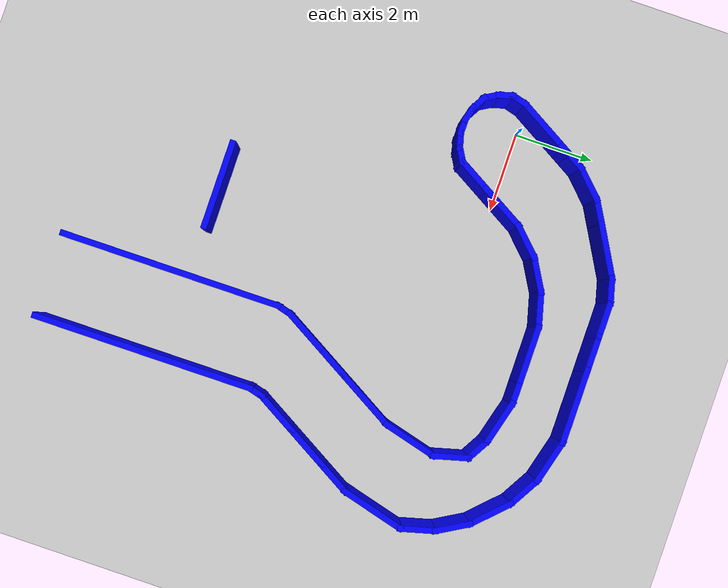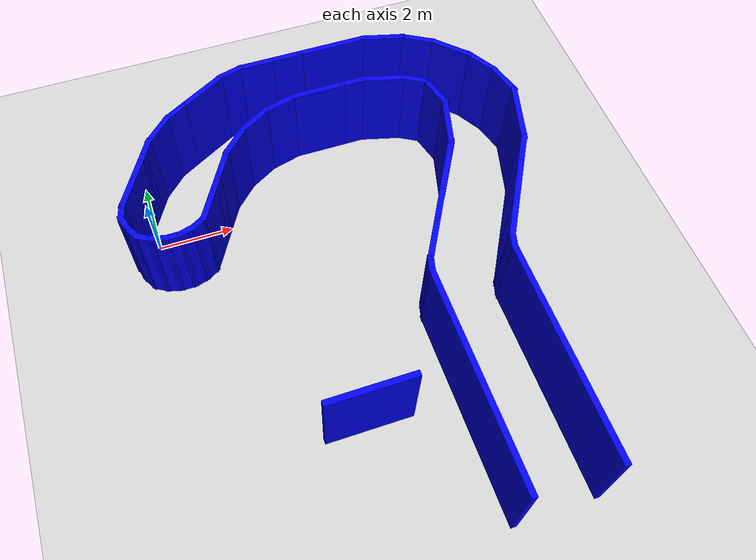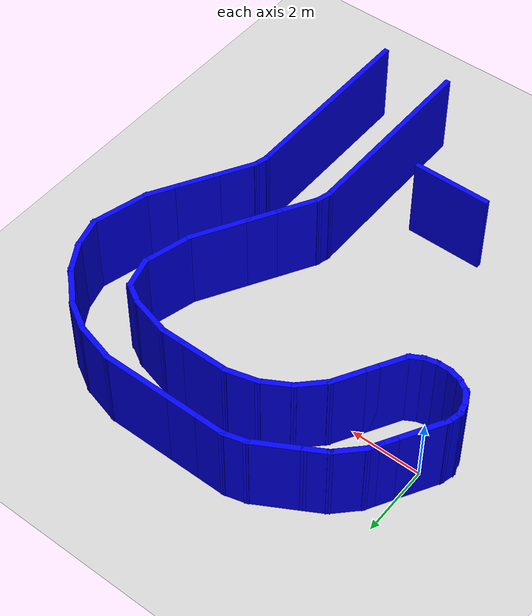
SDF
<sdf version="1.7">
 <world name="default">
  <light name="sun" type="directional">
   <pose>0 0 10 0 -0 0</pose>
   <diffuse>0.8 0.8 0.8 1</diffuse>
   <specular>0.2 0.2 0.2 1</specular>
   <attenuation>
    <range>1000</range>
    <constant>0.9</constant>
    <linear>0.01</linear>
    <quadratic>0.001</quadratic>
   </attenuation>
   <direction>-0.5 0.1 -0.9</direction>
   <spot><inner_angle>0</inner_angle><outer_angle>0</outer_angle><falloff>0</falloff></spot>
  </light>
  <model name="ground_plane">
   <static>1</static>
   <link name="link">
    <collision name="collision">
     <geometry><plane><normal>0 0 1</normal><size>100 100</size></plane></geometry>
     <surface>
      <contact><collide_bitmask>65535</collide_bitmask></contact>
      <friction><ode><mu>100</mu><mu2>50</mu2></ode></friction>
     </surface>
    </collision>
    <visual name="visual">
     <cast_shadows>0</cast_shadows>
     <geometry><plane><normal>0 0 1</normal><size>100 100</size></plane></geometry>
     <material>
      <script><uri>file://media/materials/scripts/gazebo.material</uri><name>Gazebo/Grey</name></script>
     </material>
    </visual>
   </link>
  </model>
  <gravity>0 0 -9.8</gravity>
  <magnetic_field>6e-06 2.3e-05 -4.2e-05</magnetic_field>
  <atmosphere type="adiabatic"/>
  <physics type="ode">
   <max_step_size>0.001</max_step_size>
   <real_time_factor>1</real_time_factor>
   <real_time_update_rate>1000</real_time_update_rate>
  </physics>
  <scene><ambient>0.4 0.4 0.4 1</ambient><background>0.7 0.7 0.7 1</background><shadows>1</shadows></scene>
  <audio><device>default</device></audio>
  <spherical_coordinates>
   <surface_model>EARTH_WGS84</surface_model>
   <latitude_deg>0</latitude_deg>
   <longitude_deg>0</longitude_deg>
   <elevation>0</elevation>
   <heading_deg>0</heading_deg>
  </spherical_coordinates>
  <model name="question_mark">
   <pose>3.28691 -3.29768 0 0 -0 0</pose>
   <link name="Wall_10">
    <collision name="Wall_10_Collision">
     <geometry><box><size>2.25 0.15 2.5</size></box></geometry>
     <pose>0 0 1.25 0 -0 0</pose>
    </collision>
    <visual name="Wall_10_Visual">
     <pose>0 0 1.25 0 -0 0</pose>
     <geometry><box><size>2.25 0.15 2.5</size></box></geometry>
     <material>
      <script><uri>file://media/materials/scripts/gazebo.material</uri><name>Gazebo/Grey</name></script>
      <ambient>0 0 1 1</ambient>
     </material>
     <meta><layer>0</layer></meta>
    </visual>
    <pose>0.410941 -3.22268 0 0 -0 3.14159</pose>
   </link>
   <link name="Wall_13">
    <collision name="Wall_13_Collision">
     <geometry><box><size>5.61808 0.15 2.5</size></box></geometry>
     <pose>0 0 1.25 0 -0 0</pose>
    </collision>
    <visual name="Wall_13_Visual">
     <pose>0 0 1.25 0 -0 0</pose>
     <geometry><box><size>5.61808 0.15 2.5</size></box></geometry>
     <material>
      <script><uri>file://media/materials/scripts/gazebo.material</uri><name>Gazebo/Grey</name></script>
      <ambient>0 0 1 1</ambient>
     </material>
     <meta><layer>0</layer></meta>
    </visual>
    <pose>4.81957 -3.65669 0 0 -0 1.57396</pose>
   </link>
   <link name="Wall_15">
    <collision name="Wall_15_Collision">
     <geometry><box><size>0.5 0.15 2.5</size></box></geometry>
     <pose>0 0 1.25 0 -0 0</pose>
    </collision>
    <visual name="Wall_15_Visual">
     <pose>0 0 1.25 0 -0 0</pose>
     <geometry><box><size>0.5 0.15 2.5</size></box></geometry>
     <material>
      <script><uri>file://media/materials/scripts/gazebo.material</uri><name>Gazebo/Grey</name></script>
      <ambient>0 0 1 1</ambient>
     </material>
     <meta><layer>0</layer></meta>
    </visual>
    <pose>2.75622 -0.753628 0 0 -0 1.309</pose>
   </link>
   <link name="Wall_16">
    <collision name="Wall_16_Collision">
     <geometry><box><size>1.25 0.15 2.5</size></box></geometry>
     <pose>0 0 1.25 0 -0 0</pose>
    </collision>
    <visual name="Wall_16_Visual">
     <pose>0 0 1.25 0 -0 0</pose>
     <geometry><box><size>1.25 0.15 2.5</size></box></geometry>
     <material>
      <script><uri>file://media/materials/scripts/gazebo.material</uri><name>Gazebo/Grey</name></script>
      <ambient>0 0 1 1</ambient>
     </material>
     <meta><layer>0</layer></meta>
    </visual>
    <pose>3.07651 -0.108277 0 0 -0 1.0472</pose>
   </link>
   <link name="Wall_18">
    <collision name="Wall_18_Collision">
     <geometry><box><size>0.5 0.15 2.5</size></box></geometry>
     <pose>0 0 1.25 0 -0 0</pose>
    </collision>
    <visual name="Wall_18_Visual">
     <pose>0 0 1.25 0 -0 0</pose>
     <geometry><box><size>0.5 0.15 2.5</size></box></geometry>
     <material>
      <script><uri>file://media/materials/scripts/gazebo.material</uri><name>Gazebo/Grey</name></script>
      <ambient>0 0 1 1</ambient>
     </material>
     <meta><layer>0</layer></meta>
    </visual>
    <pose>4.85622 -0.753628 0 0 -0 1.309</pose>
   </link>
   <link name="Wall_19">
    <collision name="Wall_19_Collision">
     <geometry><box><size>1.25 0.15 2.5</size></box></geometry>
     <pose>0 0 1.25 0 -0 0</pose>
    </collision>
    <visual name="Wall_19_Visual">
     <pose>0 0 1.25 0 -0 0</pose>
     <geometry><box><size>1.25 0.15 2.5</size></box></geometry>
     <material>
      <script><uri>file://media/materials/scripts/gazebo.material</uri><name>Gazebo/Grey</name></script>
      <ambient>0 0 1 1</ambient>
     </material>
     <meta><layer>0</layer></meta>
    </visual>
    <pose>5.17652 -0.108277 0 0 -0 1.0472</pose>
   </link>
   <link name="Wall_25">
    <collision name="Wall_25_Collision">
     <geometry><box><size>1 0.15 2.5</size></box></geometry>
     <pose>0 0 1.25 0 -0 0</pose>
    </collision>
    <visual name="Wall_25_Visual">
     <pose>0 0 1.25 0 -0 0</pose>
     <geometry><box><size>1 0.15 2.5</size></box></geometry>
     <material>
      <script><uri>file://media/materials/scripts/gazebo.material</uri><name>Gazebo/Grey</name></script>
      <ambient>0 0 1 1</ambient>
     </material>
     <meta><layer>0</layer></meta>
    </visual>
    <pose>3.56401 0.736098 0 0 -0 1.0472</pose>
   </link>
   <link name="Wall_27">
    <collision name="Wall_27_Collision">
     <geometry><box><size>1.75 0.15 2.5</size></box></geometry>
     <pose>0 0 1.25 0 -0 0</pose>
    </collision>
    <visual name="Wall_27_Visual">
     <pose>0 0 1.25 0 -0 0</pose>
     <geometry><box><size>1.75 0.15 2.5</size></box></geometry>
     <material>
      <script><uri>file://media/materials/scripts/gazebo.material</uri><name>Gazebo/Grey</name></script>
      <ambient>0 0 1 1</ambient>
     </material>
     <meta><layer>0</layer></meta>
    </visual>
    <pose>4.17652 1.79698 0 0 -0 1.0472</pose>
   </link>
   <link name="Wall_29">
    <collision name="Wall_29_Collision">
     <geometry><box><size>1.5 0.15 2.5</size></box></geometry>
     <pose>0 0 1.25 0 -0 0</pose>
    </collision>
    <visual name="Wall_29_Visual">
     <pose>0 0 1.25 0 -0 0</pose>
     <geometry><box><size>1.5 0.15 2.5</size></box></geometry>
     <material>
      <script><uri>file://media/materials/scripts/gazebo.material</uri><name>Gazebo/Grey</name></script>
      <ambient>0 0 1 1</ambient>
     </material>
     <meta><layer>0</layer></meta>
    </visual>
    <pose>4.75122 3.1418 0 0 -0 1.309</pose>
   </link>
   <link name="Wall_33">
    <collision name="Wall_33_Collision">
     <geometry><box><size>1 0.15 2.5</size></box></geometry>
     <pose>0 0 1.25 0 -0 0</pose>
    </collision>
    <visual name="Wall_33_Visual">
     <pose>0 0 1.25 0 -0 0</pose>
     <geometry><box><size>1 0.15 2.5</size></box></geometry>
     <material>
      <script><uri>file://media/materials/scripts/gazebo.material</uri><name>Gazebo/Grey</name></script>
      <ambient>0 0 1 1</ambient>
     </material>
     <meta><layer>0</layer></meta>
    </visual>
    <pose>4.81592 4.20432 0 0 -0 1.8326</pose>
   </link>
   <link name="Wall_34">
    <collision name="Wall_34_Collision">
     <geometry><box><size>0.75 0.15 2.5</size></box></geometry>
     <pose>0 0 1.25 0 -0 0</pose>
    </collision>
    <visual name="Wall_34_Visual">
     <pose>0 0 1.25 0 -0 0</pose>
     <geometry><box><size>0.75 0.15 2.5</size></box></geometry>
     <material>
      <script><uri>file://media/materials/scripts/gazebo.material</uri><name>Gazebo/Grey</name></script>
      <ambient>0 0 1 1</ambient>
     </material>
     <meta><layer>0</layer></meta>
    </visual>
    <pose>4.44612 4.76484 0 0 -0 2.61799</pose>
   </link>
   <link name="Wall_35">
    <collision name="Wall_35_Collision">
     <geometry><box><size>1.25 0.15 2.5</size></box></geometry>
     <pose>0 0 1.25 0 -0 0</pose>
    </collision>
    <visual name="Wall_35_Visual">
     <pose>0 0 1.25 0 -0 0</pose>
     <geometry><box><size>1.25 0.15 2.5</size></box></geometry>
     <material>
      <script><uri>file://media/materials/scripts/gazebo.material</uri><name>Gazebo/Grey</name></script>
      <ambient>0 0 1 1</ambient>
     </material>
     <meta><layer>0</layer></meta>
    </visual>
    <pose>3.65505 5.05719 0 0 -0 2.87979</pose>
   </link>
   <link name="Wall_36">
    <collision name="Wall_36_Collision">
     <geometry><box><size>0.75 0.15 2.5</size></box></geometry>
     <pose>0 0 1.25 0 -0 0</pose>
    </collision>
    <visual name="Wall_36_Visual">
     <pose>0 0 1.25 0 -0 0</pose>
     <geometry><box><size>0.75 0.15 2.5</size></box></geometry>
     <material>
      <script><uri>file://media/materials/scripts/gazebo.material</uri><name>Gazebo/Grey</name></script>
      <ambient>0 0 1 1</ambient>
     </material>
     <meta><layer>0</layer></meta>
    </visual>
    <pose>2.82379 5.19954 0 0 -0 3.14159</pose>
   </link>
   <link name="Wall_37">
    <collision name="Wall_37_Collision">
     <geometry><box><size>1.5 0.15 2.5</size></box></geometry>
     <pose>0 0 1.25 0 -0 0</pose>
    </collision>
    <visual name="Wall_37_Visual">
     <pose>0 0 1.25 0 -0 0</pose>
     <geometry><box><size>1.5 0.15 2.5</size></box></geometry>
     <material>
      <script><uri>file://media/materials/scripts/gazebo.material</uri><name>Gazebo/Grey</name></script>
      <ambient>0 0 1 1</ambient>
     </material>
     <meta><layer>0</layer></meta>
    </visual>
    <pose>1.84879 5.19954 0 0 -0 3.14159</pose>
   </link>
   <link name="Wall_38">
    <collision name="Wall_38_Collision">
     <geometry><box><size>1 0.15 2.5</size></box></geometry>
     <pose>0 0 1.25 0 -0 0</pose>
    </collision>
    <visual name="Wall_38_Visual">
     <pose>0 0 1.25 0 -0 0</pose>
     <geometry><box><size>1 0.15 2.5</size></box></geometry>
     <material>
      <script><uri>file://media/materials/scripts/gazebo.material</uri><name>Gazebo/Grey</name></script>
      <ambient>0 0 1 1</ambient>
     </material>
     <meta><layer>0</layer></meta>
    </visual>
    <pose>0.763272 5.08954 0 0 -0 -2.87979</pose>
   </link>
   <link name="Wall_39">
    <collision name="Wall_39_Collision">
     <geometry><box><size>1 0.15 2.5</size></box></geometry>
     <pose>0 0 1.25 0 -0 0</pose>
    </collision>
    <visual name="Wall_39_Visual">
     <pose>0 0 1.25 0 -0 0</pose>
     <geometry><box><size>1 0.15 2.5</size></box></geometry>
     <material>
      <script><uri>file://media/materials/scripts/gazebo.material</uri><name>Gazebo/Grey</name></script>
      <ambient>0 0 1 1</ambient>
     </material>
     <meta><layer>0</layer></meta>
    </visual>
    <pose>-0.015307 4.76704 0 0 -0 -2.61799</pose>
   </link>
   <link name="Wall_41">
    <collision name="Wall_41_Collision">
     <geometry><box><size>1 0.15 2.5</size></box></geometry>
     <pose>0 0 1.25 0 -0 0</pose>
    </collision>
    <visual name="Wall_41_Visual">
     <pose>0 0 1.25 0 -0 0</pose>
     <geometry><box><size>1 0.15 2.5</size></box></geometry>
     <material>
      <script><uri>file://media/materials/scripts/gazebo.material</uri><name>Gazebo/Grey</name></script>
      <ambient>0 0 1 1</ambient>
     </material>
     <meta><layer>0</layer></meta>
    </visual>
    <pose>-0.683889 4.25402 0 0 -0 -2.35619</pose>
   </link>
   <link name="Wall_42">
    <collision name="Wall_42_Collision">
     <geometry><box><size>1 0.15 2.5</size></box></geometry>
     <pose>0 0 1.25 0 -0 0</pose>
    </collision>
    <visual name="Wall_42_Visual">
     <pose>0 0 1.25 0 -0 0</pose>
     <geometry><box><size>1 0.15 2.5</size></box></geometry>
     <material>
      <script><uri>file://media/materials/scripts/gazebo.material</uri><name>Gazebo/Grey</name></script>
      <ambient>0 0 1 1</ambient>
     </material>
     <meta><layer>0</layer></meta>
    </visual>
    <pose>-1.19691 3.58544 0 0 -0 -2.0944</pose>
   </link>
   <link name="Wall_43">
    <collision name="Wall_43_Collision">
     <geometry><box><size>0.5 0.15 2.5</size></box></geometry>
     <pose>0 0 1.25 0 -0 0</pose>
    </collision>
    <visual name="Wall_43_Visual">
     <pose>0 0 1.25 0 -0 0</pose>
     <geometry><box><size>0.5 0.15 2.5</size></box></geometry>
     <material>
      <script><uri>file://media/materials/scripts/gazebo.material</uri><name>Gazebo/Grey</name></script>
      <ambient>0 0 1 1</ambient>
     </material>
     <meta><layer>0</layer></meta>
    </visual>
    <pose>-1.49691 3.06582 0 0 -0 -2.0944</pose>
   </link>
   <link name="Wall_44">
    <collision name="Wall_44_Collision">
     <geometry><box><size>1 0.15 2.5</size></box></geometry>
     <pose>0 0 1.25 0 -0 0</pose>
    </collision>
    <visual name="Wall_44_Visual">
     <pose>0 0 1.25 0 -0 0</pose>
     <geometry><box><size>1 0.15 2.5</size></box></geometry>
     <material>
      <script><uri>file://media/materials/scripts/gazebo.material</uri><name>Gazebo/Grey</name></script>
      <ambient>0 0 1 1</ambient>
     </material>
     <meta><layer>0</layer></meta>
    </visual>
    <pose>-1.79691 2.54621 0 0 -0 -2.0944</pose>
   </link>
   <link name="Wall_46">
    <collision name="Wall_46_Collision">
     <geometry><box><size>0.5 0.15 2.5</size></box></geometry>
     <pose>0 0 1.25 0 -0 0</pose>
    </collision>
    <visual name="Wall_46_Visual">
     <pose>0 0 1.25 0 -0 0</pose>
     <geometry><box><size>0.5 0.15 2.5</size></box></geometry>
     <material>
      <script><uri>file://media/materials/scripts/gazebo.material</uri><name>Gazebo/Grey</name></script>
      <ambient>0 0 1 1</ambient>
     </material>
     <meta><layer>0</layer></meta>
    </visual>
    <pose>-2.16096 2.09065 0 0 -0 -2.61799</pose>
   </link>
   <link name="Wall_47">
    <collision name="Wall_47_Collision">
     <geometry><box><size>0.5 0.15 2.5</size></box></geometry>
     <pose>0 0 1.25 0 -0 0</pose>
    </collision>
    <visual name="Wall_47_Visual">
     <pose>0 0 1.25 0 -0 0</pose>
     <geometry><box><size>0.5 0.15 2.5</size></box></geometry>
     <material>
      <script><uri>file://media/materials/scripts/gazebo.material</uri><name>Gazebo/Grey</name></script>
      <ambient>0 0 1 1</ambient>
     </material>
     <meta><layer>0</layer></meta>
    </visual>
    <pose>-2.48156 1.95785 0 0 -0 -2.87979</pose>
   </link>
   <link name="Wall_49">
    <collision name="Wall_49_Collision">
     <geometry><box><size>0.5 0.15 2.5</size></box></geometry>
     <pose>0 0 1.25 0 -0 0</pose>
    </collision>
    <visual name="Wall_49_Visual">
     <pose>0 0 1.25 0 -0 0</pose>
     <geometry><box><size>0.5 0.15 2.5</size></box></geometry>
     <material>
      <script><uri>file://media/materials/scripts/gazebo.material</uri><name>Gazebo/Grey</name></script>
      <ambient>0 0 1 1</ambient>
     </material>
     <meta><layer>0</layer></meta>
    </visual>
    <pose>-2.82559 1.91256 0 0 -0 3.14159</pose>
   </link>
   <link name="Wall_50">
    <collision name="Wall_50_Collision">
     <geometry><box><size>0.5 0.15 2.5</size></box></geometry>
     <pose>0 0 1.25 0 -0 0</pose>
    </collision>
    <visual name="Wall_50_Visual">
     <pose>0 0 1.25 0 -0 0</pose>
     <geometry><box><size>0.5 0.15 2.5</size></box></geometry>
     <material>
      <script><uri>file://media/materials/scripts/gazebo.material</uri><name>Gazebo/Grey</name></script>
      <ambient>0 0 1 1</ambient>
     </material>
     <meta><layer>0</layer></meta>
    </visual>
    <pose>-3.16963 1.95785 0 0 -0 2.87979</pose>
   </link>
   <link name="Wall_51">
    <collision name="Wall_51_Collision">
     <geometry><box><size>0.5 0.15 2.5</size></box></geometry>
     <pose>0 0 1.25 0 -0 0</pose>
    </collision>
    <visual name="Wall_51_Visual">
     <pose>0 0 1.25 0 -0 0</pose>
     <geometry><box><size>0.5 0.15 2.5</size></box></geometry>
     <material>
      <script><uri>file://media/materials/scripts/gazebo.material</uri><name>Gazebo/Grey</name></script>
      <ambient>0 0 1 1</ambient>
     </material>
     <meta><layer>0</layer></meta>
    </visual>
    <pose>-3.49022 2.09065 0 0 -0 2.61799</pose>
   </link>
   <link name="Wall_52">
    <collision name="Wall_52_Collision">
     <geometry><box><size>0.5 0.15 2.5</size></box></geometry>
     <pose>0 0 1.25 0 -0 0</pose>
    </collision>
    <visual name="Wall_52_Visual">
     <pose>0 0 1.25 0 -0 0</pose>
     <geometry><box><size>0.5 0.15 2.5</size></box></geometry>
     <material>
      <script><uri>file://media/materials/scripts/gazebo.material</uri><name>Gazebo/Grey</name></script>
      <ambient>0 0 1 1</ambient>
     </material>
     <meta><layer>0</layer></meta>
    </visual>
    <pose>-3.72927 2.3297 0 0 -0 2.0944</pose>
   </link>
   <link name="Wall_53">
    <collision name="Wall_53_Collision">
     <geometry><box><size>0.5 0.15 2.5</size></box></geometry>
     <pose>0 0 1.25 0 -0 0</pose>
    </collision>
    <visual name="Wall_53_Visual">
     <pose>0 0 1.25 0 -0 0</pose>
     <geometry><box><size>0.5 0.15 2.5</size></box></geometry>
     <material>
      <script><uri>file://media/materials/scripts/gazebo.material</uri><name>Gazebo/Grey</name></script>
      <ambient>0 0 1 1</ambient>
     </material>
     <meta><layer>0</layer></meta>
    </visual>
    <pose>-3.86207 2.65029 0 0 -0 1.8326</pose>
   </link>
   <link name="Wall_54">
    <collision name="Wall_54_Collision">
     <geometry><box><size>0.5 0.15 2.5</size></box></geometry>
     <pose>0 0 1.25 0 -0 0</pose>
    </collision>
    <visual name="Wall_54_Visual">
     <pose>0 0 1.25 0 -0 0</pose>
     <geometry><box><size>0.5 0.15 2.5</size></box></geometry>
     <material>
      <script><uri>file://media/materials/scripts/gazebo.material</uri><name>Gazebo/Grey</name></script>
      <ambient>0 0 1 1</ambient>
     </material>
     <meta><layer>0</layer></meta>
    </visual>
    <pose>-3.86207 2.98837 0 0 -0 1.309</pose>
   </link>
   <link name="Wall_58">
    <collision name="Wall_58_Collision">
     <geometry><box><size>1.5 0.15 2.5</size></box></geometry>
     <pose>0 0 1.25 0 -0 0</pose>
    </collision>
    <visual name="Wall_58_Visual">
     <pose>0 0 1.25 0 -0 0</pose>
     <geometry><box><size>1.5 0.15 2.5</size></box></geometry>
     <material>
      <script><uri>file://media/materials/scripts/gazebo.material</uri><name>Gazebo/Grey</name></script>
      <ambient>0 0 1 1</ambient>
     </material>
     <meta><layer>0</layer></meta>
    </visual>
    <pose>-3.47927 3.74197 0 0 -0 1.0472</pose>
   </link>
   <link name="Wall_59">
    <collision name="Wall_59_Collision">
     <geometry><box><size>0.5 0.15 2.5</size></box></geometry>
     <pose>0 0 1.25 0 -0 0</pose>
    </collision>
    <visual name="Wall_59_Visual">
     <pose>0 0 1.25 0 -0 0</pose>
     <geometry><box><size>0.5 0.15 2.5</size></box></geometry>
     <material>
      <script><uri>file://media/materials/scripts/gazebo.material</uri><name>Gazebo/Grey</name></script>
      <ambient>0 0 1 1</ambient>
     </material>
     <meta><layer>0</layer></meta>
    </visual>
    <pose>-3.05428 4.47809 0 0 -0 1.0472</pose>
   </link>
   <link name="Wall_60">
    <collision name="Wall_60_Collision">
     <geometry><box><size>0.5 0.15 2.5</size></box></geometry>
     <pose>0 0 1.25 0 -0 0</pose>
    </collision>
    <visual name="Wall_60_Visual">
     <pose>0 0 1.25 0 -0 0</pose>
     <geometry><box><size>0.5 0.15 2.5</size></box></geometry>
     <material>
      <script><uri>file://media/materials/scripts/gazebo.material</uri><name>Gazebo/Grey</name></script>
      <ambient>0 0 1 1</ambient>
     </material>
     <meta><layer>0</layer></meta>
    </visual>
    <pose>-2.87927 4.7812 0 0 -0 1.0472</pose>
   </link>
   <link name="Wall_63">
    <collision name="Wall_63_Collision">
     <geometry><box><size>1 0.15 2.5</size></box></geometry>
     <pose>0 0 1.25 0 -0 0</pose>
    </collision>
    <visual name="Wall_63_Visual">
     <pose>0 0 1.25 0 -0 0</pose>
     <geometry><box><size>1 0.15 2.5</size></box></geometry>
     <material>
      <script><uri>file://media/materials/scripts/gazebo.material</uri><name>Gazebo/Grey</name></script>
      <ambient>0 0 1 1</ambient>
     </material>
     <meta><layer>0</layer></meta>
    </visual>
    <pose>-2.49126 5.23328 0 0 -0 0.785398</pose>
   </link>
   <link name="Wall_64">
    <collision name="Wall_64_Collision">
     <geometry><box><size>0.75 0.15 2.5</size></box></geometry>
     <pose>0 0 1.25 0 -0 0</pose>
    </collision>
    <visual name="Wall_64_Visual">
     <pose>0 0 1.25 0 -0 0</pose>
     <geometry><box><size>0.75 0.15 2.5</size></box></geometry>
     <material>
      <script><uri>file://media/materials/scripts/gazebo.material</uri><name>Gazebo/Grey</name></script>
      <ambient>0 0 1 1</ambient>
     </material>
     <meta><layer>0</layer></meta>
    </visual>
    <pose>-1.93093 5.6838 0 0 -0 0.523599</pose>
   </link>
   <link name="Wall_68">
    <collision name="Wall_68_Collision">
     <geometry><box><size>1.25 0.15 2.5</size></box></geometry>
     <pose>0 0 1.25 0 -0 0</pose>
    </collision>
    <visual name="Wall_68_Visual">
     <pose>0 0 1.25 0 -0 0</pose>
     <geometry><box><size>1.25 0.15 2.5</size></box></geometry>
     <material>
      <script><uri>file://media/materials/scripts/gazebo.material</uri><name>Gazebo/Grey</name></script>
      <ambient>0 0 1 1</ambient>
     </material>
     <meta><layer>0</layer></meta>
    </visual>
    <pose>5.72651 0.844351 0 0 -0 1.0472</pose>
   </link>
   <link name="Wall_69">
    <collision name="Wall_69_Collision">
     <geometry><box><size>1 0.15 2.5</size></box></geometry>
     <pose>0 0 1.25 0 -0 0</pose>
    </collision>
    <visual name="Wall_69_Visual">
     <pose>0 0 1.25 0 -0 0</pose>
     <geometry><box><size>1 0.15 2.5</size></box></geometry>
     <material>
      <script><uri>file://media/materials/scripts/gazebo.material</uri><name>Gazebo/Grey</name></script>
      <ambient>0 0 1 1</ambient>
     </material>
     <meta><layer>0</layer></meta>
    </visual>
    <pose>6.21401 1.68873 0 0 -0 1.0472</pose>
   </link>
   <link name="Wall_70">
    <collision name="Wall_70_Collision">
     <geometry><box><size>1.75 0.15 2.5</size></box></geometry>
     <pose>0 0 1.25 0 -0 0</pose>
    </collision>
    <visual name="Wall_70_Visual">
     <pose>0 0 1.25 0 -0 0</pose>
     <geometry><box><size>1.75 0.15 2.5</size></box></geometry>
     <material>
      <script><uri>file://media/materials/scripts/gazebo.material</uri><name>Gazebo/Grey</name></script>
      <ambient>0 0 1 1</ambient>
     </material>
     <meta><layer>0</layer></meta>
    </visual>
    <pose>6.63357 2.82953 0 0 -0 1.309</pose>
   </link>
   <link name="Wall_71">
    <collision name="Wall_71_Collision">
     <geometry><box><size>1 0.15 2.5</size></box></geometry>
     <pose>0 0 1.25 0 -0 0</pose>
    </collision>
    <visual name="Wall_71_Visual">
     <pose>0 0 1.25 0 -0 0</pose>
     <geometry><box><size>1 0.15 2.5</size></box></geometry>
     <material>
      <script><uri>file://media/materials/scripts/gazebo.material</uri><name>Gazebo/Grey</name></script>
      <ambient>0 0 1 1</ambient>
     </material>
     <meta><layer>0</layer></meta>
    </visual>
    <pose>6.73063 4.01279 0 0 -0 1.8326</pose>
   </link>
   <link name="Wall_72">
    <collision name="Wall_72_Collision">
     <geometry><box><size>1 0.15 2.5</size></box></geometry>
     <pose>0 0 1.25 0 -0 0</pose>
    </collision>
    <visual name="Wall_72_Visual">
     <pose>0 0 1.25 0 -0 0</pose>
     <geometry><box><size>1 0.15 2.5</size></box></geometry>
     <material>
      <script><uri>file://media/materials/scripts/gazebo.material</uri><name>Gazebo/Grey</name></script>
      <ambient>0 0 1 1</ambient>
     </material>
     <meta><layer>0</layer></meta>
    </visual>
    <pose>6.40813 4.79137 0 0 -0 2.0944</pose>
   </link>
   <link name="Wall_73">
    <collision name="Wall_73_Collision">
     <geometry><box><size>1.25 0.15 2.5</size></box></geometry>
     <pose>0 0 1.25 0 -0 0</pose>
    </collision>
    <visual name="Wall_73_Visual">
     <pose>0 0 1.25 0 -0 0</pose>
     <geometry><box><size>1.25 0.15 2.5</size></box></geometry>
     <material>
      <script><uri>file://media/materials/scripts/gazebo.material</uri><name>Gazebo/Grey</name></script>
      <ambient>0 0 1 1</ambient>
     </material>
     <meta><layer>0</layer></meta>
    </visual>
    <pose>5.80672 5.54833 0 0 -0 2.35619</pose>
   </link>
   <link name="Wall_79">
    <collision name="Wall_79_Collision">
     <geometry><box><size>1 0.15 2.5</size></box></geometry>
     <pose>0 0 1.25 0 -0 0</pose>
    </collision>
    <visual name="Wall_79_Visual">
     <pose>0 0 1.25 0 -0 0</pose>
     <geometry><box><size>1 0.15 2.5</size></box></geometry>
     <material>
      <script><uri>file://media/materials/scripts/gazebo.material</uri><name>Gazebo/Grey</name></script>
      <ambient>0 0 1 1</ambient>
     </material>
     <meta><layer>0</layer></meta>
    </visual>
    <pose>5.04975 6.14974 0 0 -0 2.61799</pose>
   </link>
   <link name="Wall_80">
    <collision name="Wall_80_Collision">
     <geometry><box><size>1.25 0.15 2.5</size></box></geometry>
     <pose>0 0 1.25 0 -0 0</pose>
    </collision>
    <visual name="Wall_80_Visual">
     <pose>0 0 1.25 0 -0 0</pose>
     <geometry><box><size>1.25 0.15 2.5</size></box></geometry>
     <material>
      <script><uri>file://media/materials/scripts/gazebo.material</uri><name>Gazebo/Grey</name></script>
      <ambient>0 0 1 1</ambient>
     </material>
     <meta><layer>0</layer></meta>
    </visual>
    <pose>4.15043 6.50459 0 0 -0 2.87979</pose>
   </link>
   <link name="Wall_81">
    <collision name="Wall_81_Collision">
     <geometry><box><size>2 0.15 2.5</size></box></geometry>
     <pose>0 0 1.25 0 -0 0</pose>
    </collision>
    <visual name="Wall_81_Visual">
     <pose>0 0 1.25 0 -0 0</pose>
     <geometry><box><size>2 0.15 2.5</size></box></geometry>
     <material>
      <script><uri>file://media/materials/scripts/gazebo.material</uri><name>Gazebo/Grey</name></script>
      <ambient>0 0 1 1</ambient>
     </material>
     <meta><layer>0</layer></meta>
    </visual>
    <pose>2.69417 6.64694 0 0 -0 3.14159</pose>
   </link>
   <link name="Wall_82">
    <collision name="Wall_82_Collision">
     <geometry><box><size>1 0.15 2.5</size></box></geometry>
     <pose>0 0 1.25 0 -0 0</pose>
    </collision>
    <visual name="Wall_82_Visual">
     <pose>0 0 1.25 0 -0 0</pose>
     <geometry><box><size>1 0.15 2.5</size></box></geometry>
     <material>
      <script><uri>file://media/materials/scripts/gazebo.material</uri><name>Gazebo/Grey</name></script>
      <ambient>0 0 1 1</ambient>
     </material>
     <meta><layer>0</layer></meta>
    </visual>
    <pose>1.34417 6.64694 0 0 -0 3.14159</pose>
   </link>
   <link name="Wall_83">
    <collision name="Wall_83_Collision">
     <geometry><box><size>1 0.15 2.5</size></box></geometry>
     <pose>0 0 1.25 0 -0 0</pose>
    </collision>
    <visual name="Wall_83_Visual">
     <pose>0 0 1.25 0 -0 0</pose>
     <geometry><box><size>1 0.15 2.5</size></box></geometry>
     <material>
      <script><uri>file://media/materials/scripts/gazebo.material</uri><name>Gazebo/Grey</name></script>
      <ambient>0 0 1 1</ambient>
     </material>
     <meta><layer>0</layer></meta>
    </visual>
    <pose>0.494171 6.64694 0 0 -0 3.14159</pose>
   </link>
   <link name="Wall_84">
    <collision name="Wall_84_Collision">
     <geometry><box><size>0.75 0.15 2.5</size></box></geometry>
     <pose>0 0 1.25 0 -0 0</pose>
    </collision>
    <visual name="Wall_84_Visual">
     <pose>0 0 1.25 0 -0 0</pose>
     <geometry><box><size>0.75 0.15 2.5</size></box></geometry>
     <material>
      <script><uri>file://media/materials/scripts/gazebo.material</uri><name>Gazebo/Grey</name></script>
      <ambient>0 0 1 1</ambient>
     </material>
     <meta><layer>0</layer></meta>
    </visual>
    <pose>-0.220607 6.5693 0 0 -0 -2.87979</pose>
   </link>
   <link name="Wall_85">
    <collision name="Wall_85_Collision">
     <geometry><box><size>1.4842 0.15 2.5</size></box></geometry>
     <pose>0 0 1.25 0 -0 0</pose>
    </collision>
    <visual name="Wall_85_Visual">
     <pose>0 0 1.25 0 -0 0</pose>
     <geometry><box><size>1.4842 0.15 2.5</size></box></geometry>
     <material>
      <script><uri>file://media/materials/scripts/gazebo.material</uri><name>Gazebo/Grey</name></script>
      <ambient>0 0 1 1</ambient>
     </material>
     <meta><layer>0</layer></meta>
    </visual>
    <pose>-1.09075 6.16273 0 0 -0 -2.62597</pose>
   </link>
   <link name="Wall_9">
    <collision name="Wall_9_Collision">
     <geometry><box><size>5.61808 0.15 2.5</size></box></geometry>
     <pose>0 0 1.25 0 -0 0</pose>
    </collision>
    <visual name="Wall_9_Visual">
     <pose>0 0 1.25 0 -0 0</pose>
     <geometry><box><size>5.61808 0.15 2.5</size></box></geometry>
     <material>
      <script><uri>file://media/materials/scripts/gazebo.material</uri><name>Gazebo/Grey</name></script>
      <ambient>0 0 1 1</ambient>
     </material>
     <meta><layer>0</layer></meta>
    </visual>
    <pose>2.71957 -3.65669 0 0 -0 1.57396</pose>
   </link>
   <static>1</static>
  </model>
 </world>
</sdf>
